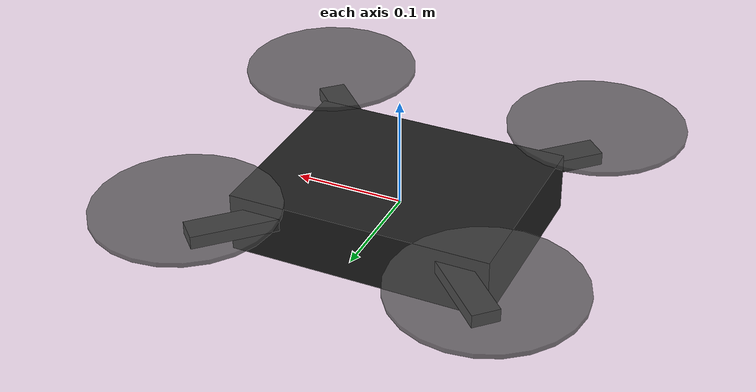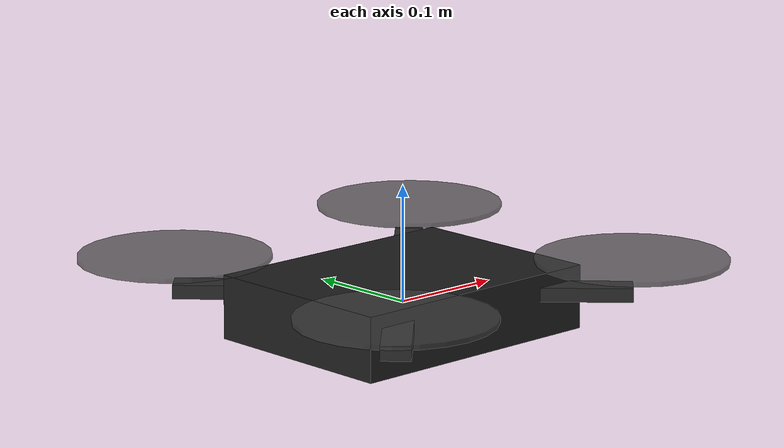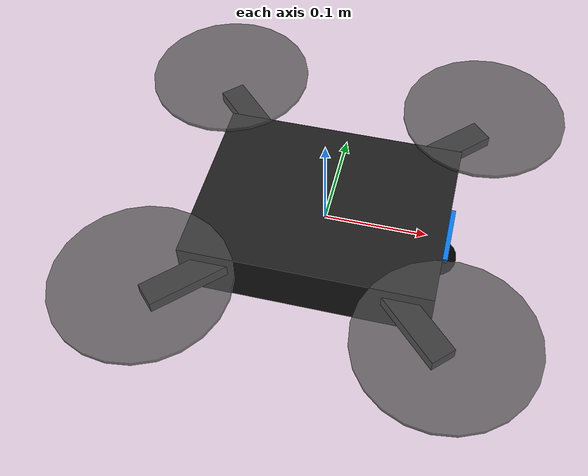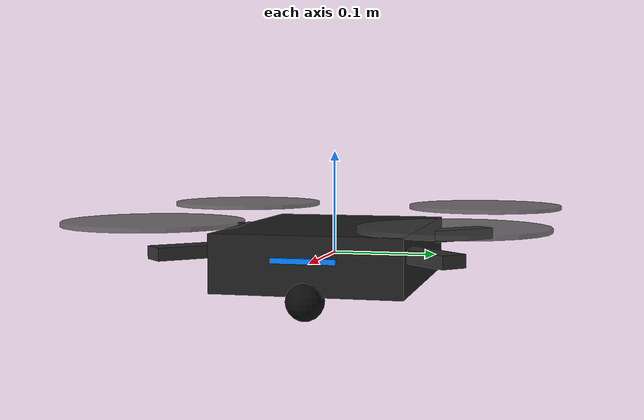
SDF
<?xml version="1.0" ?>
<sdf version="1.6">
  <model name="anafi4k">

    <static>false</static>
    <linear_damping>0.5</linear_damping>
    <angular_damping>0.5</angular_damping>

    <plugin filename="libCmdVelFlightPlugin.so" name="CmdVelFlightPlugin"/>
    <link name="base_link">

      <!-- Hover at spawn height — no physics needed for CV testing -->
      <gravity>true</gravity>
      <self_collide>false</self_collide>

      <!-- ── Inertia (real Anafi 4K: 320 g) ──────────────────────── -->
      <inertial>
        <mass>0.320</mass>
        <inertia>
          <ixx>0.0035</ixx> <ixy>0.0</ixy> <ixz>0.0</ixz>
                            <iyy>0.0035</iyy> <iyz>0.0</iyz>
                                              <izz>0.0060</izz>
        </inertia>
      </inertial>

      <!-- ── Collision hull ───────────────────────────────────────── -->
      <collision name="body_col">
        <geometry><box><size>0.30 0.30 0.08</size></box></geometry>
      </collision>

      <!-- ══════════════ VISUALS ══════════════════════════════════ -->

      <!-- Central body -->
      <visual name="body">
        <geometry><box><size>0.24 0.18 0.055</size></box></geometry>
        <material>
          <ambient>0.12 0.12 0.12 1</ambient>
          <diffuse>0.12 0.12 0.12 1</diffuse>
          <specular>0.40 0.40 0.40 1</specular>
          <emissive>0 0 0 0</emissive>
        </material>
      </visual>

      <!-- Arm stubs (4×) — thin boxes extending to rotor positions -->
      <visual name="arm_fl">
        <pose>0.09 0.09 0.01 0 0 0.785</pose>
        <geometry><box><size>0.13 0.025 0.012</size></box></geometry>
        <material><ambient>0.18 0.18 0.18 1</ambient><diffuse>0.18 0.18 0.18 1</diffuse></material>
      </visual>
      <visual name="arm_fr">
        <pose>0.09 -0.09 0.01 0 0 -0.785</pose>
        <geometry><box><size>0.13 0.025 0.012</size></box></geometry>
        <material><ambient>0.18 0.18 0.18 1</ambient><diffuse>0.18 0.18 0.18 1</diffuse></material>
      </visual>
      <visual name="arm_rl">
        <pose>-0.09 0.09 0.01 0 0 -0.785</pose>
        <geometry><box><size>0.13 0.025 0.012</size></box></geometry>
        <material><ambient>0.18 0.18 0.18 1</ambient><diffuse>0.18 0.18 0.18 1</diffuse></material>
      </visual>
      <visual name="arm_rr">
        <pose>-0.09 -0.09 0.01 0 0 0.785</pose>
        <geometry><box><size>0.13 0.025 0.012</size></box></geometry>
        <material><ambient>0.18 0.18 0.18 1</ambient><diffuse>0.18 0.18 0.18 1</diffuse></material>
      </visual>

      <!-- Rotor discs (4×) — flat cylinders at arm tips -->
      <visual name="rotor_fl">
        <pose>0.135 0.135 0.038 0 0 0</pose>
        <geometry><cylinder><radius>0.082</radius><length>0.004</length></cylinder></geometry>
        <material><ambient>0.30 0.30 0.30 0.75</ambient><diffuse>0.30 0.30 0.30 0.75</diffuse></material>
      </visual>
      <visual name="rotor_fr">
        <pose>0.135 -0.135 0.038 0 0 0</pose>
        <geometry><cylinder><radius>0.082</radius><length>0.004</length></cylinder></geometry>
        <material><ambient>0.30 0.30 0.30 0.75</ambient><diffuse>0.30 0.30 0.30 0.75</diffuse></material>
      </visual>
      <visual name="rotor_rl">
        <pose>-0.135 0.135 0.038 0 0 0</pose>
        <geometry><cylinder><radius>0.082</radius><length>0.004</length></cylinder></geometry>
        <material><ambient>0.30 0.30 0.30 0.75</ambient><diffuse>0.30 0.30 0.30 0.75</diffuse></material>
      </visual>
      <visual name="rotor_rr">
        <pose>-0.135 -0.135 0.038 0 0 0</pose>
        <geometry><cylinder><radius>0.082</radius><length>0.004</length></cylinder></geometry>
        <material><ambient>0.30 0.30 0.30 0.75</ambient><diffuse>0.30 0.30 0.30 0.75</diffuse></material>
      </visual>

      <!-- Camera gimbal pod (front-bottom, Anafi-style ball mount) -->
      <visual name="gimbal_pod">
        <pose>0.115 0 -0.032 0 0 0</pose>
        <geometry><sphere><radius>0.018</radius></sphere></geometry>
        <material>
          <ambient>0.05 0.05 0.05 1</ambient>
          <diffuse>0.05 0.05 0.05 1</diffuse>
          <specular>0.50 0.50 0.50 1</specular>
        </material>
      </visual>

      <!-- LED strip (front edge) for orientation cue in Gazebo view -->
      <visual name="front_led">
        <pose>0.122 0 0.005 0 0 0</pose>
        <geometry><box><size>0.005 0.06 0.005</size></box></geometry>
        <material><ambient>0.0 0.5 1.0 1</ambient><emissive>0.0 0.4 0.8 1</emissive></material>
      </visual>

      <sensor name="anafi_camera" type="camera">
        <pose>0.13 0 -0.025 0 0 0</pose>
        <camera name="anafi_camera">
          <horizontal_fov>1.309</horizontal_fov>
          <image>
            <width>1280</width>
            <height>720</height>
            <format>R8G8B8</format>
          </image>
          <clip>
            <near>0.10</near>
            <far>100.0</far>
          </clip>
          <noise>
            <type>gaussian</type>
            <mean>0.0</mean>
            <stddev>0.004</stddev>
          </noise>
        </camera>
        <always_on>true</always_on>
        <update_rate>30</update_rate>
        <visualize>false</visualize>  <!-- set true to see frustum in Gazebo -->
      </sensor>

    </link>  <!-- end base_link -->
  </model>
</sdf>
